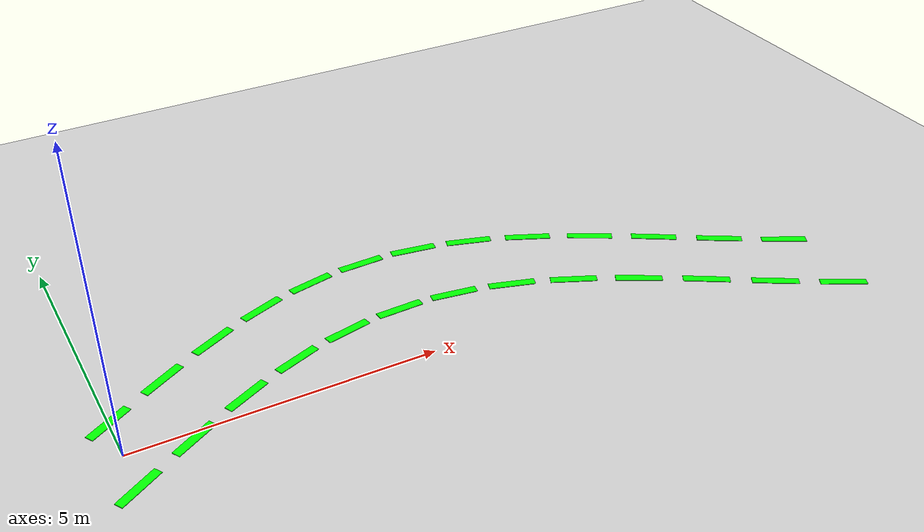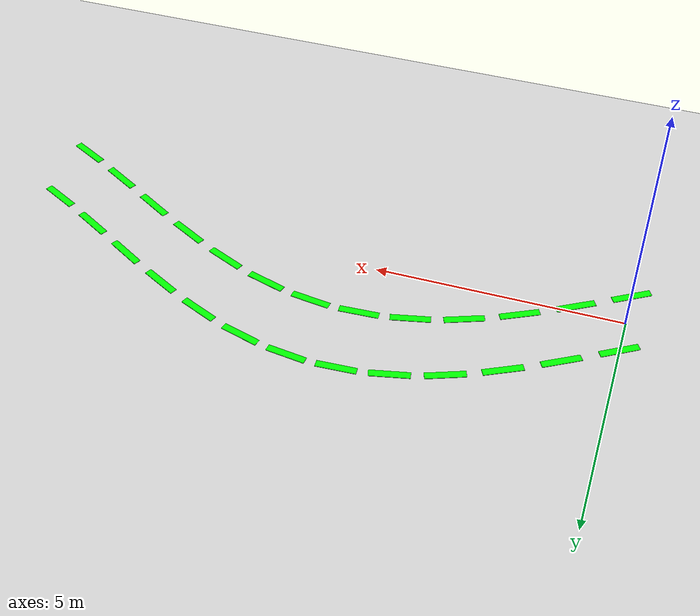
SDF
<sdf version="1.6">
 <world name="curved_lane_world">
  <include><uri>model://sun</uri></include>
  <include><uri>model://ground_plane</uri></include>
  <model name="lane_seg_0_left">
   <static>true</static>
   <pose>0.00 -0.75 0 0 0 0.54</pose>
   <link name="lane_link_0_left">
    <visual name="segment">
     <pose>0 0 0.02 0 0 0</pose>
     <geometry><box><size>0.8 0.15 0.01</size></box></geometry>
     <material><ambient>0 1 0 1</ambient><diffuse>0 1 0 1</diffuse></material>
    </visual>
   </link>
  </model>
  <model name="lane_seg_0_right">
   <static>true</static>
   <pose>0.00 0.75 0 0 0 0.54</pose>
   <link name="lane_link_0_right">
    <visual name="segment">
     <pose>0 0 0.02 0 0 0</pose>
     <geometry><box><size>0.8 0.15 0.01</size></box></geometry>
     <material><ambient>0 1 0 1</ambient><diffuse>0 1 0 1</diffuse></material>
    </visual>
   </link>
  </model>
  <model name="lane_seg_1_left">
   <static>true</static>
   <pose>1.00 -0.16 0 0 0 0.52</pose>
   <link name="lane_link_1_left">
    <visual name="segment">
     <pose>0 0 0.02 0 0 0</pose>
     <geometry><box><size>0.8 0.15 0.01</size></box></geometry>
     <material><ambient>0 1 0 1</ambient><diffuse>0 1 0 1</diffuse></material>
    </visual>
   </link>
  </model>
  <model name="lane_seg_1_right">
   <static>true</static>
   <pose>1.00 1.34 0 0 0 0.52</pose>
   <link name="lane_link_1_right">
    <visual name="segment">
     <pose>0 0 0.02 0 0 0</pose>
     <geometry><box><size>0.8 0.15 0.01</size></box></geometry>
     <material><ambient>0 1 0 1</ambient><diffuse>0 1 0 1</diffuse></material>
    </visual>
   </link>
  </model>
  <model name="lane_seg_2_left">
   <static>true</static>
   <pose>2.00 0.38 0 0 0 0.46</pose>
   <link name="lane_link_2_left">
    <visual name="segment">
     <pose>0 0 0.02 0 0 0</pose>
     <geometry><box><size>0.8 0.15 0.01</size></box></geometry>
     <material><ambient>0 1 0 1</ambient><diffuse>0 1 0 1</diffuse></material>
    </visual>
   </link>
  </model>
  <model name="lane_seg_2_right">
   <static>true</static>
   <pose>2.00 1.88 0 0 0 0.46</pose>
   <link name="lane_link_2_right">
    <visual name="segment">
     <pose>0 0 0.02 0 0 0</pose>
     <geometry><box><size>0.8 0.15 0.01</size></box></geometry>
     <material><ambient>0 1 0 1</ambient><diffuse>0 1 0 1</diffuse></material>
    </visual>
   </link>
  </model>
  <model name="lane_seg_3_left">
   <static>true</static>
   <pose>3.00 0.82 0 0 0 0.36</pose>
   <link name="lane_link_3_left">
    <visual name="segment">
     <pose>0 0 0.02 0 0 0</pose>
     <geometry><box><size>0.8 0.15 0.01</size></box></geometry>
     <material><ambient>0 1 0 1</ambient><diffuse>0 1 0 1</diffuse></material>
    </visual>
   </link>
  </model>
  <model name="lane_seg_3_right">
   <static>true</static>
   <pose>3.00 2.32 0 0 0 0.36</pose>
   <link name="lane_link_3_right">
    <visual name="segment">
     <pose>0 0 0.02 0 0 0</pose>
     <geometry><box><size>0.8 0.15 0.01</size></box></geometry>
     <material><ambient>0 1 0 1</ambient><diffuse>0 1 0 1</diffuse></material>
    </visual>
   </link>
  </model>
  <model name="lane_seg_4_left">
   <static>true</static>
   <pose>4.00 1.11 0 0 0 0.21</pose>
   <link name="lane_link_4_left">
    <visual name="segment">
     <pose>0 0 0.02 0 0 0</pose>
     <geometry><box><size>0.8 0.15 0.01</size></box></geometry>
     <material><ambient>0 1 0 1</ambient><diffuse>0 1 0 1</diffuse></material>
    </visual>
   </link>
  </model>
  <model name="lane_seg_4_right">
   <static>true</static>
   <pose>4.00 2.61 0 0 0 0.21</pose>
   <link name="lane_link_4_right">
    <visual name="segment">
     <pose>0 0 0.02 0 0 0</pose>
     <geometry><box><size>0.8 0.15 0.01</size></box></geometry>
     <material><ambient>0 1 0 1</ambient><diffuse>0 1 0 1</diffuse></material>
    </visual>
   </link>
  </model>
  <model name="lane_seg_5_left">
   <static>true</static>
   <pose>5.00 1.24 0 0 0 0.04</pose>
   <link name="lane_link_5_left">
    <visual name="segment">
     <pose>0 0 0.02 0 0 0</pose>
     <geometry><box><size>0.8 0.15 0.01</size></box></geometry>
     <material><ambient>0 1 0 1</ambient><diffuse>0 1 0 1</diffuse></material>
    </visual>
   </link>
  </model>
  <model name="lane_seg_5_right">
   <static>true</static>
   <pose>5.00 2.74 0 0 0 0.04</pose>
   <link name="lane_link_5_right">
    <visual name="segment">
     <pose>0 0 0.02 0 0 0</pose>
     <geometry><box><size>0.8 0.15 0.01</size></box></geometry>
     <material><ambient>0 1 0 1</ambient><diffuse>0 1 0 1</diffuse></material>
    </visual>
   </link>
  </model>
  <model name="lane_seg_6_left">
   <static>true</static>
   <pose>6.00 1.20 0 0 0 -0.14</pose>
   <link name="lane_link_6_left">
    <visual name="segment">
     <pose>0 0 0.02 0 0 0</pose>
     <geometry><box><size>0.8 0.15 0.01</size></box></geometry>
     <material><ambient>0 1 0 1</ambient><diffuse>0 1 0 1</diffuse></material>
    </visual>
   </link>
  </model>
  <model name="lane_seg_6_right">
   <static>true</static>
   <pose>6.00 2.70 0 0 0 -0.14</pose>
   <link name="lane_link_6_right">
    <visual name="segment">
     <pose>0 0 0.02 0 0 0</pose>
     <geometry><box><size>0.8 0.15 0.01</size></box></geometry>
     <material><ambient>0 1 0 1</ambient><diffuse>0 1 0 1</diffuse></material>
    </visual>
   </link>
  </model>
  <model name="lane_seg_7_left">
   <static>true</static>
   <pose>7.00 0.98 0 0 0 -0.29</pose>
   <link name="lane_link_7_left">
    <visual name="segment">
     <pose>0 0 0.02 0 0 0</pose>
     <geometry><box><size>0.8 0.15 0.01</size></box></geometry>
     <material><ambient>0 1 0 1</ambient><diffuse>0 1 0 1</diffuse></material>
    </visual>
   </link>
  </model>
  <model name="lane_seg_7_right">
   <static>true</static>
   <pose>7.00 2.48 0 0 0 -0.29</pose>
   <link name="lane_link_7_right">
    <visual name="segment">
     <pose>0 0 0.02 0 0 0</pose>
     <geometry><box><size>0.8 0.15 0.01</size></box></geometry>
     <material><ambient>0 1 0 1</ambient><diffuse>0 1 0 1</diffuse></material>
    </visual>
   </link>
  </model>
  <model name="lane_seg_8_left">
   <static>true</static>
   <pose>8.00 0.60 0 0 0 -0.42</pose>
   <link name="lane_link_8_left">
    <visual name="segment">
     <pose>0 0 0.02 0 0 0</pose>
     <geometry><box><size>0.8 0.15 0.01</size></box></geometry>
     <material><ambient>0 1 0 1</ambient><diffuse>0 1 0 1</diffuse></material>
    </visual>
   </link>
  </model>
  <model name="lane_seg_8_right">
   <static>true</static>
   <pose>8.00 2.10 0 0 0 -0.42</pose>
   <link name="lane_link_8_right">
    <visual name="segment">
     <pose>0 0 0.02 0 0 0</pose>
     <geometry><box><size>0.8 0.15 0.01</size></box></geometry>
     <material><ambient>0 1 0 1</ambient><diffuse>0 1 0 1</diffuse></material>
    </visual>
   </link>
  </model>
  <model name="lane_seg_9_left">
   <static>true</static>
   <pose>9.00 0.10 0 0 0 -0.50</pose>
   <link name="lane_link_9_left">
    <visual name="segment">
     <pose>0 0 0.02 0 0 0</pose>
     <geometry><box><size>0.8 0.15 0.01</size></box></geometry>
     <material><ambient>0 1 0 1</ambient><diffuse>0 1 0 1</diffuse></material>
    </visual>
   </link>
  </model>
  <model name="lane_seg_9_right">
   <static>true</static>
   <pose>9.00 1.60 0 0 0 -0.50</pose>
   <link name="lane_link_9_right">
    <visual name="segment">
     <pose>0 0 0.02 0 0 0</pose>
     <geometry><box><size>0.8 0.15 0.01</size></box></geometry>
     <material><ambient>0 1 0 1</ambient><diffuse>0 1 0 1</diffuse></material>
    </visual>
   </link>
  </model>
  <model name="lane_seg_10_left">
   <static>true</static>
   <pose>10.00 -0.47 0 0 0 -0.54</pose>
   <link name="lane_link_10_left">
    <visual name="segment">
     <pose>0 0 0.02 0 0 0</pose>
     <geometry><box><size>0.8 0.15 0.01</size></box></geometry>
     <material><ambient>0 1 0 1</ambient><diffuse>0 1 0 1</diffuse></material>
    </visual>
   </link>
  </model>
  <model name="lane_seg_10_right">
   <static>true</static>
   <pose>10.00 1.03 0 0 0 -0.54</pose>
   <link name="lane_link_10_right">
    <visual name="segment">
     <pose>0 0 0.02 0 0 0</pose>
     <geometry><box><size>0.8 0.15 0.01</size></box></geometry>
     <material><ambient>0 1 0 1</ambient><diffuse>0 1 0 1</diffuse></material>
    </visual>
   </link>
  </model>
  <model name="lane_seg_11_left">
   <static>true</static>
   <pose>11.00 -1.07 0 0 0 -0.53</pose>
   <link name="lane_link_11_left">
    <visual name="segment">
     <pose>0 0 0.02 0 0 0</pose>
     <geometry><box><size>0.8 0.15 0.01</size></box></geometry>
     <material><ambient>0 1 0 1</ambient><diffuse>0 1 0 1</diffuse></material>
    </visual>
   </link>
  </model>
  <model name="lane_seg_11_right">
   <static>true</static>
   <pose>11.00 0.43 0 0 0 -0.53</pose>
   <link name="lane_link_11_right">
    <visual name="segment">
     <pose>0 0 0.02 0 0 0</pose>
     <geometry><box><size>0.8 0.15 0.01</size></box></geometry>
     <material><ambient>0 1 0 1</ambient><diffuse>0 1 0 1</diffuse></material>
    </visual>
   </link>
  </model>
  <model name="lane_seg_12_left">
   <static>true</static>
   <pose>12.00 -1.64 0 0 0 -0.49</pose>
   <link name="lane_link_12_left">
    <visual name="segment">
     <pose>0 0 0.02 0 0 0</pose>
     <geometry><box><size>0.8 0.15 0.01</size></box></geometry>
     <material><ambient>0 1 0 1</ambient><diffuse>0 1 0 1</diffuse></material>
    </visual>
   </link>
  </model>
  <model name="lane_seg_12_right">
   <static>true</static>
   <pose>12.00 -0.14 0 0 0 -0.49</pose>
   <link name="lane_link_12_right">
    <visual name="segment">
     <pose>0 0 0.02 0 0 0</pose>
     <geometry><box><size>0.8 0.15 0.01</size></box></geometry>
     <material><ambient>0 1 0 1</ambient><diffuse>0 1 0 1</diffuse></material>
    </visual>
   </link>
  </model>
 </world>
</sdf>
